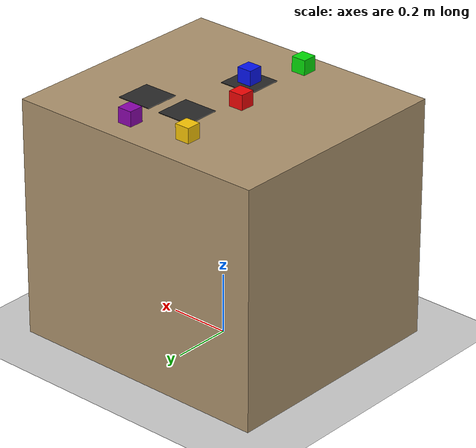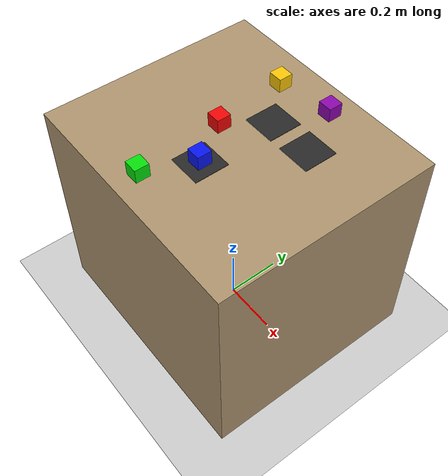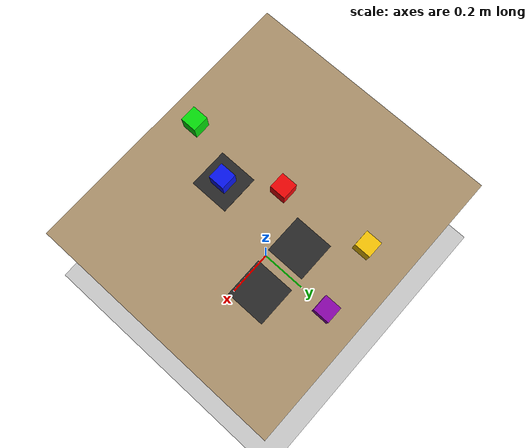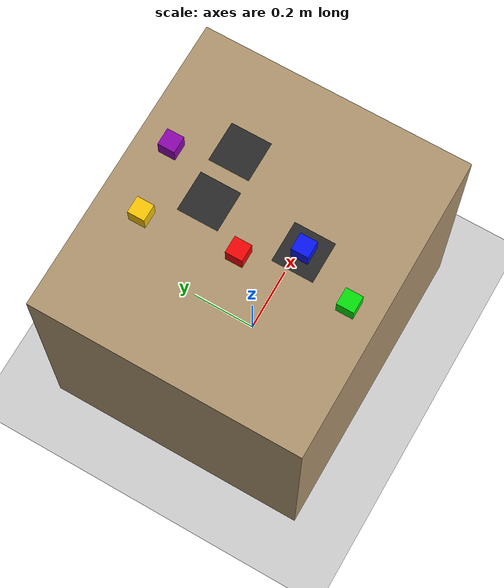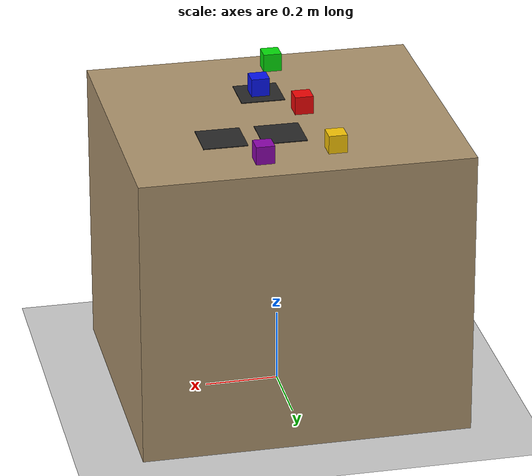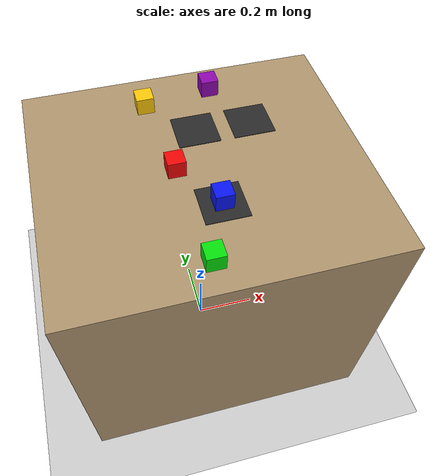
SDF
<?xml version="1.0"?>
<sdf version="1.6">
  <world name="ur3_sorting">
    <gravity>0 0 -9.81</gravity>
    <include><uri>model://sun</uri></include>
    <include><uri>model://ground_plane</uri></include>

    <physics name="default_physics" type="ode">
      <max_step_size>0.001</max_step_size>
      <real_time_factor>1.0</real_time_factor>
      <real_time_update_rate>1000</real_time_update_rate>
    </physics>

    <model name="work_table">
      <static>true</static>
      <pose>0 0 0.40 0 0 0</pose>
      <link name="table_link">
        <collision name="table_collision">
          <geometry><box><size>0.90 0.80 0.80</size></box></geometry>
        </collision>
        <visual name="table_visual">
          <geometry><box><size>0.90 0.80 0.80</size></box></geometry>
          <material><ambient>0.68 0.58 0.43 1</ambient><diffuse>0.68 0.58 0.43 1</diffuse></material>
        </visual>
      </link>
    </model>

    <!-- Neutral dark mats make the three calibrated placement zones visible
         in Gazebo without matching any of the block color masks. -->
    <model name="zone_a_marker"><static>true</static><pose>0.02 0.14 0.801 0 0 0</pose><link name="marker">
      <collision name="collision"><geometry><box><size>0.12 0.12 0.002</size></box></geometry></collision>
      <visual name="visual"><geometry><box><size>0.12 0.12 0.002</size></box></geometry><material><ambient>0.16 0.16 0.16 1</ambient><diffuse>0.16 0.16 0.16 1</diffuse></material></visual>
    </link></model>
    <model name="zone_b_marker"><static>true</static><pose>0.02 -0.14 0.801 0 0 0</pose><link name="marker">
      <collision name="collision"><geometry><box><size>0.12 0.12 0.002</size></box></geometry></collision>
      <visual name="visual"><geometry><box><size>0.12 0.12 0.002</size></box></geometry><material><ambient>0.16 0.16 0.16 1</ambient><diffuse>0.16 0.16 0.16 1</diffuse></material></visual>
    </link></model>
    <model name="zone_c_marker"><static>true</static><pose>0.18 0.14 0.801 0 0 0</pose><link name="marker">
      <collision name="collision"><geometry><box><size>0.12 0.12 0.002</size></box></geometry></collision>
      <visual name="visual"><geometry><box><size>0.12 0.12 0.002</size></box></geometry><material><ambient>0.16 0.16 0.16 1</ambient><diffuse>0.16 0.16 0.16 1</diffuse></material></visual>
    </link></model>

    <!-- Reproducible occupancy case: blue_cube starts in zone_b. -->
    <model name="blue_cube"><pose>0.02 -0.14 0.827 0 0 0</pose><link name="link">
      <inertial><mass>0.045</mass><inertia><ixx>0.000019</ixx><iyy>0.000019</iyy><izz>0.000019</izz><ixy>0</ixy><ixz>0</ixz><iyz>0</iyz></inertia></inertial>
      <collision name="collision"><geometry><box><size>0.05 0.05 0.05</size></box></geometry><surface><friction><ode><mu>2.0</mu><mu2>2.0</mu2></ode></friction></surface></collision>
      <visual name="visual"><geometry><box><size>0.05 0.05 0.05</size></box></geometry><material><ambient>0.03 0.08 0.95 1</ambient><diffuse>0.03 0.08 0.95 1</diffuse></material></visual>
    </link></model>
    <model name="red_cube"><pose>-0.07 0.00 0.825 0 0 0</pose><link name="link">
      <inertial><mass>0.045</mass><inertia><ixx>0.000019</ixx><iyy>0.000019</iyy><izz>0.000019</izz><ixy>0</ixy><ixz>0</ixz><iyz>0</iyz></inertia></inertial>
      <collision name="collision"><geometry><box><size>0.05 0.05 0.05</size></box></geometry><surface><friction><ode><mu>2.0</mu><mu2>2.0</mu2></ode></friction></surface></collision>
      <visual name="visual"><geometry><box><size>0.05 0.05 0.05</size></box></geometry><material><ambient>0.95 0.02 0.02 1</ambient><diffuse>0.95 0.02 0.02 1</diffuse></material></visual>
    </link></model>
    <model name="yellow_cube"><pose>-0.10 0.27 0.825 0 0 0</pose><link name="link">
      <inertial><mass>0.045</mass><inertia><ixx>0.000019</ixx><iyy>0.000019</iyy><izz>0.000019</izz><ixy>0</ixy><ixz>0</ixz><iyz>0</iyz></inertia></inertial>
      <collision name="collision"><geometry><box><size>0.05 0.05 0.05</size></box></geometry><surface><friction><ode><mu>2.0</mu><mu2>2.0</mu2></ode></friction></surface></collision>
      <visual name="visual"><geometry><box><size>0.05 0.05 0.05</size></box></geometry><material><ambient>0.98 0.78 0.02 1</ambient><diffuse>0.98 0.78 0.02 1</diffuse></material></visual>
    </link></model>
    <model name="green_cube"><pose>-0.05 -0.31 0.825 0 0 0</pose><link name="link">
      <inertial><mass>0.045</mass><inertia><ixx>0.000019</ixx><iyy>0.000019</iyy><izz>0.000019</izz><ixy>0</ixy><ixz>0</ixz><iyz>0</iyz></inertia></inertial>
      <collision name="collision"><geometry><box><size>0.05 0.05 0.05</size></box></geometry><surface><friction><ode><mu>2.0</mu><mu2>2.0</mu2></ode></friction></surface></collision>
      <visual name="visual"><geometry><box><size>0.05 0.05 0.05</size></box></geometry><material><ambient>0.02 0.88 0.04 1</ambient><diffuse>0.02 0.88 0.04 1</diffuse></material></visual>
    </link></model>
    <model name="purple_cube"><pose>0.10 0.30 0.825 0 0 0</pose><link name="link">
      <inertial><mass>0.045</mass><inertia><ixx>0.000019</ixx><iyy>0.000019</iyy><izz>0.000019</izz><ixy>0</ixy><ixz>0</ixz><iyz>0</iyz></inertia></inertial>
      <collision name="collision"><geometry><box><size>0.05 0.05 0.05</size></box></geometry><surface><friction><ode><mu>2.0</mu><mu2>2.0</mu2></ode></friction></surface></collision>
      <visual name="visual"><geometry><box><size>0.05 0.05 0.05</size></box></geometry><material><ambient>0.55 0.02 0.68 1</ambient><diffuse>0.55 0.02 0.68 1</diffuse></material></visual>
    </link></model>
  </world>
</sdf>
